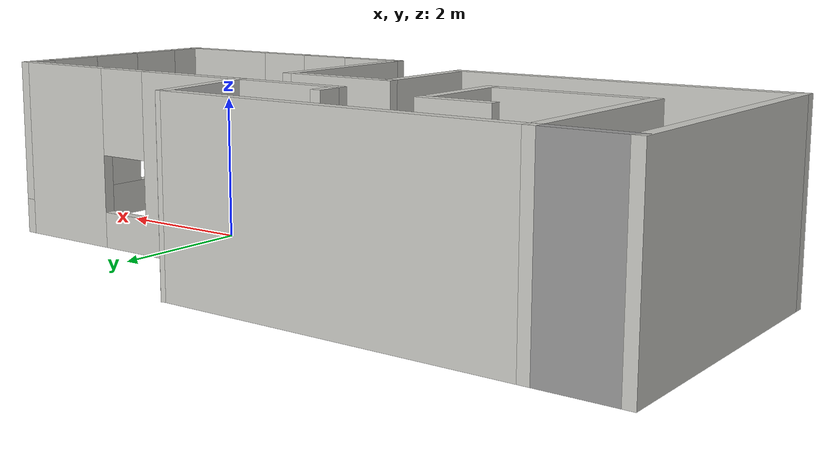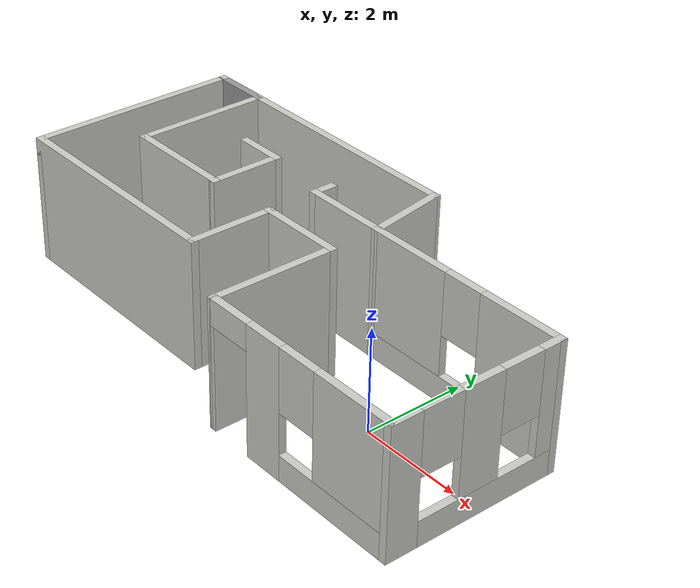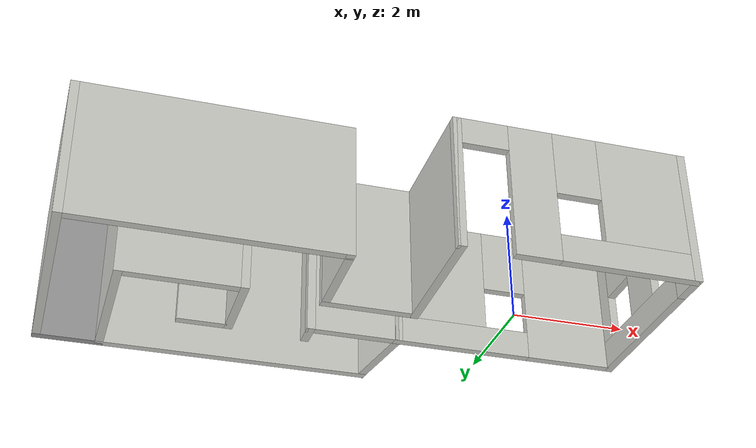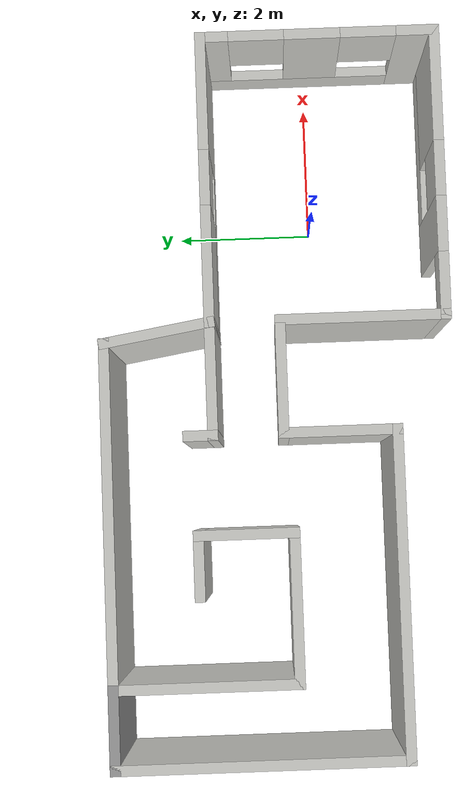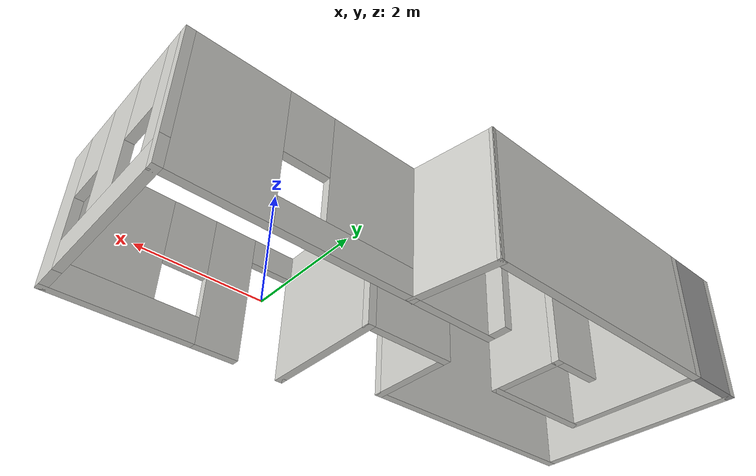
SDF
<?xml version='1.0'?>
<sdf version='1.7'>
  <model name='test_trace'>
    <pose>-2.65859 0.597469 0 0 -0 0</pose>
    <link name='Wall_10'>
      <collision name='Wall_10_Collision'>
        <geometry>
          <box>
            <size>2.5 0.15 2.5</size>
          </box>
        </geometry>
        <pose>0 0 1.25 0 -0 0</pose>
      </collision>
      <visual name='Wall_10_Visual'>
        <pose>0 0 1.25 0 -0 0</pose>
        <geometry>
          <box>
            <size>2.5 0.15 2.5</size>
          </box>
        </geometry>
        <material>
          <script>
            <uri>file://media/materials/scripts/gazebo.material</uri>
            <name>Gazebo/CeilingTiled</name>
          </script>
          <ambient>1 1 1 1</ambient>
        </material>
        <meta>
          <layer>0</layer>
        </meta>
      </visual>
      <pose>1.05 -1.25565 0 0 -0 1.5708</pose>
    </link>
    <link name='Wall_11'>
      <collision name='Wall_11_Collision'>
        <geometry>
          <box>
            <size>1.75 0.15 2.5</size>
          </box>
        </geometry>
        <pose>0 0 1.25 0 -0 0</pose>
      </collision>
      <visual name='Wall_11_Visual'>
        <pose>0 0 1.25 0 -0 0</pose>
        <geometry>
          <box>
            <size>1.75 0.15 2.5</size>
          </box>
        </geometry>
        <material>
          <script>
            <uri>file://media/materials/scripts/gazebo.material</uri>
            <name>Gazebo/CeilingTiled</name>
          </script>
          <ambient>1 1 1 1</ambient>
        </material>
        <meta>
          <layer>0</layer>
        </meta>
      </visual>
      <pose>0.25 -0.080655 0 0 -0 3.14159</pose>
    </link>
    <link name='Wall_12'>
      <collision name='Wall_12_Collision'>
        <geometry>
          <box>
            <size>1.75 0.15 2.5</size>
          </box>
        </geometry>
        <pose>0 0 1.25 0 -0 0</pose>
      </collision>
      <visual name='Wall_12_Visual'>
        <pose>0 0 1.25 0 -0 0</pose>
        <geometry>
          <box>
            <size>1.75 0.15 2.5</size>
          </box>
        </geometry>
        <material>
          <script>
            <uri>file://media/materials/scripts/gazebo.material</uri>
            <name>Gazebo/CeilingTiled</name>
          </script>
          <ambient>1 1 1 1</ambient>
        </material>
        <meta>
          <layer>0</layer>
        </meta>
      </visual>
      <pose>-0.55 -0.880655 0 0 -0 -1.5708</pose>
    </link>
    <link name='Wall_13'>
      <collision name='Wall_13_Collision'>
        <geometry>
          <box>
            <size>4.75 0.15 2.5</size>
          </box>
        </geometry>
        <pose>0 0 1.25 0 -0 0</pose>
      </collision>
      <visual name='Wall_13_Visual'>
        <pose>0 0 1.25 0 -0 0</pose>
        <geometry>
          <box>
            <size>4.75 0.15 2.5</size>
          </box>
        </geometry>
        <material>
          <script>
            <uri>file://media/materials/scripts/gazebo.material</uri>
            <name>Gazebo/CeilingTiled</name>
          </script>
          <ambient>1 1 1 1</ambient>
        </material>
        <meta>
          <layer>0</layer>
        </meta>
      </visual>
      <pose>-2.85 -1.68066 0 0 -0 3.14159</pose>
    </link>
    <link name='Wall_14'>
      <collision name='Wall_14_Collision'>
        <geometry>
          <box>
            <size>4.25 0.15 2.5</size>
          </box>
        </geometry>
        <pose>0 0 1.25 0 -0 0</pose>
      </collision>
      <visual name='Wall_14_Visual'>
        <pose>0 0 1.25 0 -0 0</pose>
        <geometry>
          <box>
            <size>4.25 0.15 2.5</size>
          </box>
        </geometry>
        <material>
          <script>
            <uri>file://media/materials/scripts/gazebo.material</uri>
            <name>Gazebo/CeilingTiled</name>
          </script>
          <ambient>1 1 1 1</ambient>
        </material>
        <meta>
          <layer>0</layer>
        </meta>
      </visual>
      <pose>-5.15 0.369345 0 0 -0 1.5708</pose>
    </link>
    <link name='Wall_15'>
      <collision name='Wall_15_Collision'>
        <geometry>
          <box>
            <size>1.25 0.15 2.5</size>
          </box>
        </geometry>
        <pose>0 0 1.25 0 -0 0</pose>
      </collision>
      <visual name='Wall_15_Visual'>
        <pose>0 0 1.25 0 -0 0</pose>
        <geometry>
          <box>
            <size>1.25 0.15 2.5</size>
          </box>
        </geometry>
        <material>
          <script>
            <uri>file://media/materials/scripts/gazebo.material</uri>
            <name>Gazebo/Grey</name>
          </script>
          <ambient>1 1 1 1</ambient>
        </material>
        <meta>
          <layer>0</layer>
        </meta>
      </visual>
      <pose>-4.6 2.41934 0 0 -0 0</pose>
    </link>
    <link name='Wall_16'>
      <collision name='Wall_16_Collision'>
        <geometry>
          <box>
            <size>2.75 0.15 2.5</size>
          </box>
        </geometry>
        <pose>0 0 1.25 0 -0 0</pose>
      </collision>
      <visual name='Wall_16_Visual'>
        <pose>0 0 1.25 0 -0 0</pose>
        <geometry>
          <box>
            <size>2.75 0.15 2.5</size>
          </box>
        </geometry>
        <material>
          <script>
            <uri>file://media/materials/scripts/gazebo.material</uri>
            <name>Gazebo/CeilingTiled</name>
          </script>
          <ambient>1 1 1 1</ambient>
        </material>
        <meta>
          <layer>0</layer>
        </meta>
      </visual>
      <pose>-4.05 1.11935 0 0 -0 -1.5708</pose>
    </link>
    <link name='Wall_17'>
      <collision name='Wall_17_Collision'>
        <geometry>
          <box>
            <size>2.25 0.15 2.5</size>
          </box>
        </geometry>
        <pose>0 0 1.25 0 -0 0</pose>
      </collision>
      <visual name='Wall_17_Visual'>
        <pose>0 0 1.25 0 -0 0</pose>
        <geometry>
          <box>
            <size>2.25 0.15 2.5</size>
          </box>
        </geometry>
        <material>
          <script>
            <uri>file://media/materials/scripts/gazebo.material</uri>
            <name>Gazebo/CeilingTiled</name>
          </script>
          <ambient>1 1 1 1</ambient>
        </material>
        <meta>
          <layer>0</layer>
        </meta>
      </visual>
      <pose>-3 -0.180655 0 0 -0 0</pose>
    </link>
    <link name='Wall_18'>
      <collision name='Wall_18_Collision'>
        <geometry>
          <box>
            <size>1.5 0.15 2.5</size>
          </box>
        </geometry>
        <pose>0 0 1.25 0 -0 0</pose>
      </collision>
      <visual name='Wall_18_Visual'>
        <pose>0 0 1.25 0 -0 0</pose>
        <geometry>
          <box>
            <size>1.5 0.15 2.5</size>
          </box>
        </geometry>
        <material>
          <script>
            <uri>file://media/materials/scripts/gazebo.material</uri>
            <name>Gazebo/CeilingTiled</name>
          </script>
          <ambient>1 1 1 1</ambient>
        </material>
        <meta>
          <layer>0</layer>
        </meta>
      </visual>
      <pose>-1.95 0.494345 0 0 -0 1.5708</pose>
    </link>
    <link name='Wall_19'>
      <collision name='Wall_19_Collision'>
        <geometry>
          <box>
            <size>1 0.15 2.5</size>
          </box>
        </geometry>
        <pose>0 0 1.25 0 -0 0</pose>
      </collision>
      <visual name='Wall_19_Visual'>
        <pose>0 0 1.25 0 -0 0</pose>
        <geometry>
          <box>
            <size>1 0.15 2.5</size>
          </box>
        </geometry>
        <material>
          <script>
            <uri>file://media/materials/scripts/gazebo.material</uri>
            <name>Gazebo/CeilingTiled</name>
          </script>
          <ambient>1 1 1 1</ambient>
        </material>
        <meta>
          <layer>0</layer>
        </meta>
      </visual>
      <pose>-2.375 1.16935 0 0 -0 3.14159</pose>
    </link>
    <link name='Wall_22'>
      <collision name='Wall_22_Collision'>
        <geometry>
          <box>
            <size>5 0.15 2.5</size>
          </box>
        </geometry>
        <pose>0 0 1.25 0 -0 0</pose>
      </collision>
      <visual name='Wall_22_Visual'>
        <pose>0 0 1.25 0 -0 0</pose>
        <geometry>
          <box>
            <size>5 0.15 2.5</size>
          </box>
        </geometry>
        <material>
          <script>
            <uri>file://media/materials/scripts/gazebo.material</uri>
            <name>Gazebo/CeilingTiled</name>
          </script>
          <ambient>1 1 1 1</ambient>
        </material>
        <meta>
          <layer>0</layer>
        </meta>
      </visual>
      <pose>-1.625 2.41934 0 0 -0 0</pose>
    </link>
    <link name='Wall_23'>
      <collision name='Wall_23_Collision'>
        <geometry>
          <box>
            <size>1.67069 0.15 2.5</size>
          </box>
        </geometry>
        <pose>0 0 1.25 0 -0 0</pose>
      </collision>
      <visual name='Wall_23_Visual'>
        <pose>0 0 1.25 0 -0 0</pose>
        <geometry>
          <box>
            <size>1.67069 0.15 2.5</size>
          </box>
        </geometry>
        <material>
          <script>
            <uri>file://media/materials/scripts/gazebo.material</uri>
            <name>Gazebo/CeilingTiled</name>
          </script>
          <ambient>1 1 1 1</ambient>
        </material>
        <meta>
          <layer>0</layer>
        </meta>
      </visual>
      <pose>0.925 1.66935 0 0 -0 -1.40565</pose>
    </link>
    <link name='Wall_26'>
      <collision name='Wall_26_Collision'>
        <geometry>
          <box>
            <size>1.75 0.15 2.5</size>
          </box>
        </geometry>
        <pose>0 0 1.25 0 -0 0</pose>
      </collision>
      <visual name='Wall_26_Visual'>
        <pose>0 0 1.25 0 -0 0</pose>
        <geometry>
          <box>
            <size>1.75 0.15 2.5</size>
          </box>
        </geometry>
        <material>
          <script>
            <uri>file://media/materials/scripts/gazebo.material</uri>
            <name>Gazebo/CeilingTiled</name>
          </script>
          <ambient>1 1 1 1</ambient>
        </material>
        <meta>
          <layer>0</layer>
        </meta>
      </visual>
      <pose>0.25 0.919345 0 0 -0 3.14159</pose>
    </link>
    <link name='Wall_27'>
      <collision name='Wall_27_Collision'>
        <geometry>
          <box>
            <size>0.5 0.15 2.5</size>
          </box>
        </geometry>
        <pose>0 0 1.25 0 -0 0</pose>
      </collision>
      <visual name='Wall_27_Visual'>
        <pose>0 0 1.25 0 -0 0</pose>
        <geometry>
          <box>
            <size>0.5 0.15 2.5</size>
          </box>
        </geometry>
        <material>
          <script>
            <uri>file://media/materials/scripts/gazebo.material</uri>
            <name>Gazebo/CeilingTiled</name>
          </script>
          <ambient>1 1 1 1</ambient>
        </material>
        <meta>
          <layer>0</layer>
        </meta>
      </visual>
      <pose>-0.55 1.09434 0 0 -0 1.5708</pose>
    </link>
    <link name='Wall_4'>
      <pose>3.1 -2.43065 0 0 -0 0</pose>
      <visual name='Wall_4_Visual_0'>
        <pose>-2.08931 0 1.25 0 -0 0</pose>
        <geometry>
          <box>
            <size>0.07138 0.15 2.5</size>
          </box>
        </geometry>
        <material>
          <script>
            <uri>file://media/materials/scripts/gazebo.material</uri>
            <name>Gazebo/CeilingTiled</name>
          </script>
          <ambient>1 1 1 1</ambient>
        </material>
        <meta>
          <layer>0</layer>
        </meta>
      </visual>
      <collision name='Wall_4_Collision_0'>
        <geometry>
          <box>
            <size>0.07138 0.15 2.5</size>
          </box>
        </geometry>
        <pose>-2.08931 0 1.25 0 -0 0</pose>
      </collision>
      <visual name='Wall_4_Visual_1'>
        <pose>-0.753964 0 1.25 0 -0 0</pose>
        <geometry>
          <box>
            <size>0.799313 0.15 2.5</size>
          </box>
        </geometry>
        <material>
          <script>
            <uri>file://media/materials/scripts/gazebo.material</uri>
            <name>Gazebo/CeilingTiled</name>
          </script>
          <ambient>1 1 1 1</ambient>
        </material>
        <meta>
          <layer>0</layer>
        </meta>
      </visual>
      <collision name='Wall_4_Collision_1'>
        <geometry>
          <box>
            <size>0.799313 0.15 2.5</size>
          </box>
        </geometry>
        <pose>-0.753964 0 1.25 0 -0 0</pose>
      </collision>
      <visual name='Wall_4_Visual_2'>
        <pose>0.885346 0 0.25 0 -0 0</pose>
        <geometry>
          <box>
            <size>2.47931 0.15 0.5</size>
          </box>
        </geometry>
        <material>
          <script>
            <uri>file://media/materials/scripts/gazebo.material</uri>
            <name>Gazebo/CeilingTiled</name>
          </script>
          <ambient>1 1 1 1</ambient>
        </material>
        <meta>
          <layer>0</layer>
        </meta>
      </visual>
      <collision name='Wall_4_Collision_2'>
        <geometry>
          <box>
            <size>2.47931 0.15 0.5</size>
          </box>
        </geometry>
        <pose>0.885346 0 0.25 0 -0 0</pose>
      </collision>
      <visual name='Wall_4_Visual_3'>
        <pose>1.28535 0 1.5 0 -0 0</pose>
        <geometry>
          <box>
            <size>1.67931 0.15 2</size>
          </box>
        </geometry>
        <material>
          <script>
            <uri>file://media/materials/scripts/gazebo.material</uri>
            <name>Gazebo/CeilingTiled</name>
          </script>
          <ambient>1 1 1 1</ambient>
        </material>
        <meta>
          <layer>0</layer>
        </meta>
      </visual>
      <collision name='Wall_4_Collision_3'>
        <geometry>
          <box>
            <size>1.67931 0.15 2</size>
          </box>
        </geometry>
        <pose>1.28535 0 1.5 0 -0 0</pose>
      </collision>
      <visual name='Wall_4_Visual_4'>
        <pose>0.045692 0 1.9 0 -0 0</pose>
        <geometry>
          <box>
            <size>0.8 0.15 1.2</size>
          </box>
        </geometry>
        <material>
          <script>
            <uri>file://media/materials/scripts/gazebo.material</uri>
            <name>Gazebo/CeilingTiled</name>
          </script>
          <ambient>1 1 1 1</ambient>
        </material>
        <meta>
          <layer>0</layer>
        </meta>
      </visual>
      <collision name='Wall_4_Collision_4'>
        <geometry>
          <box>
            <size>0.8 0.15 1.2</size>
          </box>
        </geometry>
        <pose>0.045692 0 1.9 0 -0 0</pose>
      </collision>
      <visual name='Wall_4_Visual_5'>
        <pose>-1.60362 0 2.25 0 -0 0</pose>
        <geometry>
          <box>
            <size>0.9 0.15 0.5</size>
          </box>
        </geometry>
        <material>
          <script>
            <uri>file://media/materials/scripts/gazebo.material</uri>
            <name>Gazebo/CeilingTiled</name>
          </script>
          <ambient>1 1 1 1</ambient>
        </material>
        <meta>
          <layer>0</layer>
        </meta>
      </visual>
      <collision name='Wall_4_Collision_5'>
        <geometry>
          <box>
            <size>0.9 0.15 0.5</size>
          </box>
        </geometry>
        <pose>-1.60362 0 2.25 0 -0 0</pose>
      </collision>
    </link>
    <link name='Wall_5'>
      <pose>5.15 -0.755655 0 0 -0 1.5708</pose>
      <visual name='Wall_5_Visual_0'>
        <pose>-1.44232 0 1.25 0 -0 0</pose>
        <geometry>
          <box>
            <size>0.615362 0.15 2.5</size>
          </box>
        </geometry>
        <material>
          <script>
            <uri>file://media/materials/scripts/gazebo.material</uri>
            <name>Gazebo/CeilingTiled</name>
          </script>
          <ambient>1 1 1 1</ambient>
        </material>
        <meta>
          <layer>0</layer>
        </meta>
      </visual>
      <collision name='Wall_5_Collision_0'>
        <geometry>
          <box>
            <size>0.615362 0.15 2.5</size>
          </box>
        </geometry>
        <pose>-1.44232 0 1.25 0 -0 0</pose>
      </collision>
      <visual name='Wall_5_Visual_1'>
        <pose>0.307681 0 0.25 0 -0 0</pose>
        <geometry>
          <box>
            <size>2.88464 0.15 0.5</size>
          </box>
        </geometry>
        <material>
          <script>
            <uri>file://media/materials/scripts/gazebo.material</uri>
            <name>Gazebo/CeilingTiled</name>
          </script>
          <ambient>1 1 1 1</ambient>
        </material>
        <meta>
          <layer>0</layer>
        </meta>
      </visual>
      <collision name='Wall_5_Collision_1'>
        <geometry>
          <box>
            <size>2.88464 0.15 0.5</size>
          </box>
        </geometry>
        <pose>0.307681 0 0.25 0 -0 0</pose>
      </collision>
      <visual name='Wall_5_Visual_2'>
        <pose>0.069905 0 1.5 0 -0 0</pose>
        <geometry>
          <box>
            <size>0.809086 0.15 2</size>
          </box>
        </geometry>
        <material>
          <script>
            <uri>file://media/materials/scripts/gazebo.material</uri>
            <name>Gazebo/CeilingTiled</name>
          </script>
          <ambient>1 1 1 1</ambient>
        </material>
        <meta>
          <layer>0</layer>
        </meta>
      </visual>
      <collision name='Wall_5_Collision_2'>
        <geometry>
          <box>
            <size>0.809086 0.15 2</size>
          </box>
        </geometry>
        <pose>0.069905 0 1.5 0 -0 0</pose>
      </collision>
      <visual name='Wall_5_Visual_3'>
        <pose>1.51222 0 1.5 0 -0 0</pose>
        <geometry>
          <box>
            <size>0.475552 0.15 2</size>
          </box>
        </geometry>
        <material>
          <script>
            <uri>file://media/materials/scripts/gazebo.material</uri>
            <name>Gazebo/CeilingTiled</name>
          </script>
          <ambient>1 1 1 1</ambient>
        </material>
        <meta>
          <layer>0</layer>
        </meta>
      </visual>
      <collision name='Wall_5_Collision_3'>
        <geometry>
          <box>
            <size>0.475552 0.15 2</size>
          </box>
        </geometry>
        <pose>1.51222 0 1.5 0 -0 0</pose>
      </collision>
      <visual name='Wall_5_Visual_4'>
        <pose>-0.734638 0 1.9 0 -0 0</pose>
        <geometry>
          <box>
            <size>0.8 0.15 1.2</size>
          </box>
        </geometry>
        <material>
          <script>
            <uri>file://media/materials/scripts/gazebo.material</uri>
            <name>Gazebo/CeilingTiled</name>
          </script>
          <ambient>1 1 1 1</ambient>
        </material>
        <meta>
          <layer>0</layer>
        </meta>
      </visual>
      <collision name='Wall_5_Collision_4'>
        <geometry>
          <box>
            <size>0.8 0.15 1.2</size>
          </box>
        </geometry>
        <pose>-0.734638 0 1.9 0 -0 0</pose>
      </collision>
      <visual name='Wall_5_Visual_5'>
        <pose>0.874448 0 1.9 0 -0 0</pose>
        <geometry>
          <box>
            <size>0.8 0.15 1.2</size>
          </box>
        </geometry>
        <material>
          <script>
            <uri>file://media/materials/scripts/gazebo.material</uri>
            <name>Gazebo/CeilingTiled</name>
          </script>
          <ambient>1 1 1 1</ambient>
        </material>
        <meta>
          <layer>0</layer>
        </meta>
      </visual>
      <collision name='Wall_5_Collision_5'>
        <geometry>
          <box>
            <size>0.8 0.15 1.2</size>
          </box>
        </geometry>
        <pose>0.874448 0 1.9 0 -0 0</pose>
      </collision>
    </link>
    <link name='Wall_6'>
      <pose>3.1 0.919345 0 0 -0 3.14159</pose>
      <visual name='Wall_6_Visual_0'>
        <pose>-1.27529 0 1.25 0 -0 0</pose>
        <geometry>
          <box>
            <size>1.69942 0.15 2.5</size>
          </box>
        </geometry>
        <material>
          <script>
            <uri>file://media/materials/scripts/gazebo.material</uri>
            <name>Gazebo/CeilingTiled</name>
          </script>
          <ambient>1 1 1 1</ambient>
        </material>
        <meta>
          <layer>0</layer>
        </meta>
      </visual>
      <collision name='Wall_6_Collision_0'>
        <geometry>
          <box>
            <size>1.69942 0.15 2.5</size>
          </box>
        </geometry>
        <pose>-1.27529 0 1.25 0 -0 0</pose>
      </collision>
      <visual name='Wall_6_Visual_1'>
        <pose>0.849711 0 0.25 0 -0 0</pose>
        <geometry>
          <box>
            <size>2.55058 0.15 0.5</size>
          </box>
        </geometry>
        <material>
          <script>
            <uri>file://media/materials/scripts/gazebo.material</uri>
            <name>Gazebo/CeilingTiled</name>
          </script>
          <ambient>1 1 1 1</ambient>
        </material>
        <meta>
          <layer>0</layer>
        </meta>
      </visual>
      <collision name='Wall_6_Collision_1'>
        <geometry>
          <box>
            <size>2.55058 0.15 0.5</size>
          </box>
        </geometry>
        <pose>0.849711 0 0.25 0 -0 0</pose>
      </collision>
      <visual name='Wall_6_Visual_2'>
        <pose>1.24971 0 1.5 0 -0 0</pose>
        <geometry>
          <box>
            <size>1.75058 0.15 2</size>
          </box>
        </geometry>
        <material>
          <script>
            <uri>file://media/materials/scripts/gazebo.material</uri>
            <name>Gazebo/CeilingTiled</name>
          </script>
          <ambient>1 1 1 1</ambient>
        </material>
        <meta>
          <layer>0</layer>
        </meta>
      </visual>
      <collision name='Wall_6_Collision_2'>
        <geometry>
          <box>
            <size>1.75058 0.15 2</size>
          </box>
        </geometry>
        <pose>1.24971 0 1.5 0 -0 0</pose>
      </collision>
      <visual name='Wall_6_Visual_3'>
        <pose>-0.025579 0 1.9 0 -0 0</pose>
        <geometry>
          <box>
            <size>0.8 0.15 1.2</size>
          </box>
        </geometry>
        <material>
          <script>
            <uri>file://media/materials/scripts/gazebo.material</uri>
            <name>Gazebo/CeilingTiled</name>
          </script>
          <ambient>1 1 1 1</ambient>
        </material>
        <meta>
          <layer>0</layer>
        </meta>
      </visual>
      <collision name='Wall_6_Collision_3'>
        <geometry>
          <box>
            <size>0.8 0.15 1.2</size>
          </box>
        </geometry>
        <pose>-0.025579 0 1.9 0 -0 0</pose>
      </collision>
    </link>
    <static>1</static>
  </model>
</sdf>
